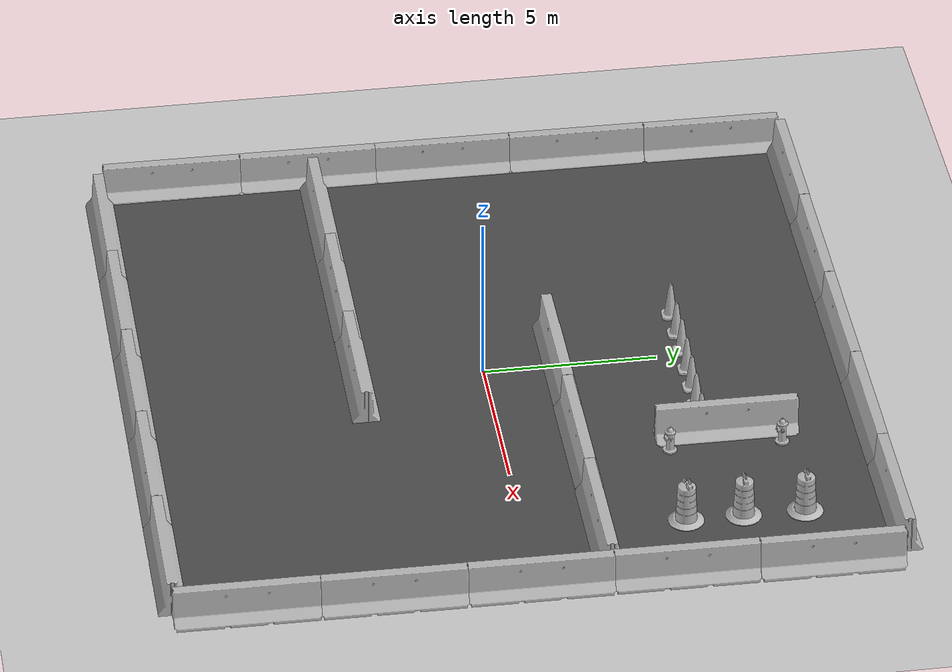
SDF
<sdf version="1.6">
 <world name="default">
  <light name="sun" type="directional">
   <pose>0 0 10 0 -0 0</pose>
   <diffuse>0.8 0.8 0.8 1</diffuse>
   <specular>0.2 0.2 0.2 1</specular>
   <attenuation>
    <range>1000</range>
    <constant>0.9</constant>
    <linear>0.01</linear>
    <quadratic>0.001</quadratic>
   </attenuation>
   <direction>-0.5 0.1 -0.9</direction>
   <spot><inner_angle>0</inner_angle><outer_angle>0</outer_angle><falloff>0</falloff></spot>
  </light>
  <model name="ground_plane">
   <static>1</static>
   <link name="link">
    <collision name="collision">
     <geometry><plane><normal>0 0 1</normal><size>100 100</size></plane></geometry>
     <surface><friction><ode><mu>100</mu><mu2>50</mu2></ode></friction></surface>
    </collision>
    <visual name="visual">
     <cast_shadows>0</cast_shadows>
     <geometry><plane><normal>0 0 1</normal><size>100 100</size></plane></geometry>
     <material>
      <script><uri>file://media/materials/scripts/gazebo.material</uri><name>Gazebo/Grey</name></script>
     </material>
    </visual>
    <velocity_decay><linear>0</linear><angular>0</angular></velocity_decay>
   </link>
  </model>
  <physics type="ode">
   <max_step_size>0.01</max_step_size>
   <real_time_factor>1</real_time_factor>
   <real_time_update_rate>100</real_time_update_rate>
  </physics>
  <scene><ambient>0.4 0.4 0.4 1</ambient><background>0.7 0.7 0.7 1</background><shadows>1</shadows></scene>
  <model name="jersey_barrier">
   <static>1</static>
   <link name="link">
    <visual name="visual">
     <geometry><mesh><uri>model://jersey_barrier/meshes/jersey_barrier.dae</uri></mesh></geometry>
    </visual>
    <collision name="upright">
     <pose>0 0 0.5715 0 -0 0</pose>
     <geometry><box><size>4.06542 0.3063 1.143</size></box></geometry>
    </collision>
    <collision name="base">
     <pose>0 0 0.032258 0 -0 0</pose>
     <geometry><box><size>4.06542 0.8107 0.064516</size></box></geometry>
    </collision>
    <collision name="base2">
     <pose>0 0 0.1 0 -0 0</pose>
     <geometry><box><size>4.06542 0.65 0.1</size></box></geometry>
    </collision>
    <collision name="base3">
     <pose>0 0 0.2 0 -0 0</pose>
     <geometry><box><size>4.06542 0.5 0.1</size></box></geometry>
    </collision>
    <collision name="left-angle">
     <pose>0 -0.224 0.2401 0.9 -0 0</pose>
     <geometry><box><size>4.06542 0.5 0.064516</size></box></geometry>
    </collision>
    <collision name="right-angle">
     <pose>0 0.224 0.2401 -0.9 0 0</pose>
     <geometry><box><size>4.06542 0.5 0.064516</size></box></geometry>
    </collision>
    <velocity_decay><linear>0</linear><angular>0</angular></velocity_decay>
   </link>
   <pose>-8 -10 0 0 -0 0</pose>
  </model>
  <model name="fire_hydrant_0">
   <static>1</static>
   <link name="link">
    <collision name="collision">
     <geometry><mesh><uri>model://fire_hydrant/meshes/fire_hydrant.dae</uri></mesh></geometry>
    </collision>
    <visual name="visual">
     <geometry><mesh><uri>model://fire_hydrant/meshes/fire_hydrant.dae</uri></mesh></geometry>
    </visual>
    <velocity_decay><linear>0</linear><angular>0</angular></velocity_decay>
   </link>
   <pose>4.7195 7.79795 0 0 -0 0</pose>
  </model>
  <model name="Construction Cone_0">
   <link name="link">
    <collision name="collision">
     <geometry>
      <mesh><scale>10 10 10</scale><uri>model://construction_cone/meshes/construction_cone.dae</uri></mesh>
     </geometry>
    </collision>
    <visual name="visual">
     <geometry>
      <mesh><scale>10 10 10</scale><uri>model://construction_cone/meshes/construction_cone.dae</uri></mesh>
     </geometry>
    </visual>
    <velocity_decay><linear>0</linear><angular>0</angular></velocity_decay>
    <inertial>
     <inertia><ixx>1</ixx><ixy>0</ixy><ixz>0</ixz><iyy>1</iyy><iyz>0</iyz><izz>1</izz></inertia>
     <mass>1</mass>
    </inertial>
   </link>
   <pose>3.53425 5.69091 0.050021 -0 8.3e-05 -0.007009</pose>
   <static>0</static>
  </model>
  <model name="Construction Barrel_0">
   <link name="link">
    <inertial>
     <pose>0 0 0.4 0 -0 0</pose>
     <mass>500</mass>
     <inertia><ixx>51.2096</ixx><iyy>51.2096</iyy><izz>25</izz><ixy>0</ixy><ixz>0</ixz><iyz>0</iyz></inertia>
    </inertial>
    <collision name="collision">
     <geometry><mesh><uri>model://construction_barrel/meshes/construction_barrel.dae</uri></mesh></geometry>
    </collision>
    <visual name="visual">
     <geometry><mesh><uri>model://construction_barrel/meshes/construction_barrel.dae</uri></mesh></geometry>
    </visual>
    <velocity_decay><linear>0</linear><angular>0</angular></velocity_decay>
   </link>
   <pose>7.89018 4.52192 0.049844 0.00056 3.1e-05 0.261558</pose>
   <static>0</static>
  </model>
  <model name="asphalt_plane">
   <static>1</static>
   <link name="link">
    <collision name="collision"><geometry><box><size>20 20 0.1</size></box></geometry></collision>
    <visual name="visual">
     <cast_shadows>0</cast_shadows>
     <geometry><box><size>20 20 0.1</size></box></geometry>
     <material>
      <script>
       <uri>model://asphalt_plane/materials/scripts</uri>
       <uri>model://asphalt_plane/materials/textures</uri>
       <name>vrc/asphalt</name>
      </script>
     </material>
    </visual>
    <velocity_decay><linear>0</linear><angular>0</angular></velocity_decay>
   </link>
   <pose>0.085302 -0.02706 0 0 -0 0</pose>
  </model>
  <model name="Construction Barrel_1">
   <link name="link">
    <inertial>
     <pose>0 0 0.4 0 -0 0</pose>
     <mass>500</mass>
     <inertia><ixx>51.2096</ixx><iyy>51.2096</iyy><izz>25</izz><ixy>0</ixy><ixz>0</ixz><iyz>0</iyz></inertia>
    </inertial>
    <collision name="collision">
     <geometry><mesh><uri>model://construction_barrel/meshes/construction_barrel.dae</uri></mesh></geometry>
    </collision>
    <visual name="visual">
     <geometry><mesh><uri>model://construction_barrel/meshes/construction_barrel.dae</uri></mesh></geometry>
    </visual>
    <velocity_decay><linear>0</linear><angular>0</angular></velocity_decay>
   </link>
   <pose>7.88454 6.13951 0.0499 -9.4e-05 -0.00041 -0.009523</pose>
   <static>0</static>
  </model>
  <model name="Construction Barrel_2">
   <link name="link">
    <inertial>
     <pose>0 0 0.4 0 -0 0</pose>
     <mass>500</mass>
     <inertia><ixx>51.2096</ixx><iyy>51.2096</iyy><izz>25</izz><ixy>0</ixy><ixz>0</ixz><iyz>0</iyz></inertia>
    </inertial>
    <collision name="collision">
     <geometry><mesh><uri>model://construction_barrel/meshes/construction_barrel.dae</uri></mesh></geometry>
    </collision>
    <visual name="visual">
     <geometry><mesh><uri>model://construction_barrel/meshes/construction_barrel.dae</uri></mesh></geometry>
    </visual>
    <velocity_decay><linear>0</linear><angular>0</angular></velocity_decay>
   </link>
   <pose>7.92498 7.86719 0.049882 0.000474 -7e-06 0.064855</pose>
   <static>0</static>
  </model>
  <gravity>0 0 -9.8</gravity>
  <magnetic_field>6e-06 2.3e-05 -4.2e-05</magnetic_field>
  <atmosphere type="adiabatic"/>
  <spherical_coordinates>
   <surface_model>EARTH_WGS84</surface_model>
   <latitude_deg>0</latitude_deg>
   <longitude_deg>0</longitude_deg>
   <elevation>0</elevation>
   <heading_deg>0</heading_deg>
  </spherical_coordinates>
  <model name="jersey_barrier_clone">
   <static>1</static>
   <link name="link">
    <visual name="visual">
     <geometry><mesh><uri>model://jersey_barrier/meshes/jersey_barrier.dae</uri></mesh></geometry>
    </visual>
    <collision name="upright">
     <pose>0 0 0.5715 0 -0 0</pose>
     <geometry><box><size>4.06542 0.3063 1.143</size></box></geometry>
    </collision>
    <collision name="base">
     <pose>0 0 0.032258 0 -0 0</pose>
     <geometry><box><size>4.06542 0.8107 0.064516</size></box></geometry>
    </collision>
    <collision name="base2">
     <pose>0 0 0.1 0 -0 0</pose>
     <geometry><box><size>4.06542 0.65 0.1</size></box></geometry>
    </collision>
    <collision name="base3">
     <pose>0 0 0.2 0 -0 0</pose>
     <geometry><box><size>4.06542 0.5 0.1</size></box></geometry>
    </collision>
    <collision name="left-angle">
     <pose>0 -0.224 0.2401 0.9 -0 0</pose>
     <geometry><box><size>4.06542 0.5 0.064516</size></box></geometry>
    </collision>
    <collision name="right-angle">
     <pose>0 0.224 0.2401 -0.9 0 0</pose>
     <geometry><box><size>4.06542 0.5 0.064516</size></box></geometry>
    </collision>
    <velocity_decay><linear>0</linear><angular>0</angular></velocity_decay>
   </link>
   <pose>-3.98491 -10 0 0 -0 0</pose>
  </model>
  <model name="jersey_barrier_clone_0">
   <static>1</static>
   <link name="link">
    <visual name="visual">
     <geometry><mesh><uri>model://jersey_barrier/meshes/jersey_barrier.dae</uri></mesh></geometry>
    </visual>
    <collision name="upright">
     <pose>0 0 0.5715 0 -0 0</pose>
     <geometry><box><size>4.06542 0.3063 1.143</size></box></geometry>
    </collision>
    <collision name="base">
     <pose>0 0 0.032258 0 -0 0</pose>
     <geometry><box><size>4.06542 0.8107 0.064516</size></box></geometry>
    </collision>
    <collision name="base2">
     <pose>0 0 0.1 0 -0 0</pose>
     <geometry><box><size>4.06542 0.65 0.1</size></box></geometry>
    </collision>
    <collision name="base3">
     <pose>0 0 0.2 0 -0 0</pose>
     <geometry><box><size>4.06542 0.5 0.1</size></box></geometry>
    </collision>
    <collision name="left-angle">
     <pose>0 -0.224 0.2401 0.9 -0 0</pose>
     <geometry><box><size>4.06542 0.5 0.064516</size></box></geometry>
    </collision>
    <collision name="right-angle">
     <pose>0 0.224 0.2401 -0.9 0 0</pose>
     <geometry><box><size>4.06542 0.5 0.064516</size></box></geometry>
    </collision>
    <velocity_decay><linear>0</linear><angular>0</angular></velocity_decay>
   </link>
   <pose>0.029689 -10 0 0 -0 0</pose>
  </model>
  <model name="jersey_barrier_clone_1">
   <static>1</static>
   <link name="link">
    <visual name="visual">
     <geometry><mesh><uri>model://jersey_barrier/meshes/jersey_barrier.dae</uri></mesh></geometry>
    </visual>
    <collision name="upright">
     <pose>0 0 0.5715 0 -0 0</pose>
     <geometry><box><size>4.06542 0.3063 1.143</size></box></geometry>
    </collision>
    <collision name="base">
     <pose>0 0 0.032258 0 -0 0</pose>
     <geometry><box><size>4.06542 0.8107 0.064516</size></box></geometry>
    </collision>
    <collision name="base2">
     <pose>0 0 0.1 0 -0 0</pose>
     <geometry><box><size>4.06542 0.65 0.1</size></box></geometry>
    </collision>
    <collision name="base3">
     <pose>0 0 0.2 0 -0 0</pose>
     <geometry><box><size>4.06542 0.5 0.1</size></box></geometry>
    </collision>
    <collision name="left-angle">
     <pose>0 -0.224 0.2401 0.9 -0 0</pose>
     <geometry><box><size>4.06542 0.5 0.064516</size></box></geometry>
    </collision>
    <collision name="right-angle">
     <pose>0 0.224 0.2401 -0.9 0 0</pose>
     <geometry><box><size>4.06542 0.5 0.064516</size></box></geometry>
    </collision>
    <velocity_decay><linear>0</linear><angular>0</angular></velocity_decay>
   </link>
   <pose>4.05757 -10 0 0 -0 0</pose>
  </model>
  <model name="jersey_barrier_clone_2">
   <static>1</static>
   <link name="link">
    <visual name="visual">
     <geometry><mesh><uri>model://jersey_barrier/meshes/jersey_barrier.dae</uri></mesh></geometry>
    </visual>
    <collision name="upright">
     <pose>0 0 0.5715 0 -0 0</pose>
     <geometry><box><size>4.06542 0.3063 1.143</size></box></geometry>
    </collision>
    <collision name="base">
     <pose>0 0 0.032258 0 -0 0</pose>
     <geometry><box><size>4.06542 0.8107 0.064516</size></box></geometry>
    </collision>
    <collision name="base2">
     <pose>0 0 0.1 0 -0 0</pose>
     <geometry><box><size>4.06542 0.65 0.1</size></box></geometry>
    </collision>
    <collision name="base3">
     <pose>0 0 0.2 0 -0 0</pose>
     <geometry><box><size>4.06542 0.5 0.1</size></box></geometry>
    </collision>
    <collision name="left-angle">
     <pose>0 -0.224 0.2401 0.9 -0 0</pose>
     <geometry><box><size>4.06542 0.5 0.064516</size></box></geometry>
    </collision>
    <collision name="right-angle">
     <pose>0 0.224 0.2401 -0.9 0 0</pose>
     <geometry><box><size>4.06542 0.5 0.064516</size></box></geometry>
    </collision>
    <velocity_decay><linear>0</linear><angular>0</angular></velocity_decay>
   </link>
   <pose>8.08988 -10 0 0 -0 0</pose>
  </model>
  <model name="jersey_barrier_clone_2_clone">
   <static>1</static>
   <link name="link">
    <visual name="visual">
     <geometry><mesh><uri>model://jersey_barrier/meshes/jersey_barrier.dae</uri></mesh></geometry>
    </visual>
    <collision name="upright">
     <pose>0 0 0.5715 0 -0 0</pose>
     <geometry><box><size>4.06542 0.3063 1.143</size></box></geometry>
    </collision>
    <collision name="base">
     <pose>0 0 0.032258 0 -0 0</pose>
     <geometry><box><size>4.06542 0.8107 0.064516</size></box></geometry>
    </collision>
    <collision name="base2">
     <pose>0 0 0.1 0 -0 0</pose>
     <geometry><box><size>4.06542 0.65 0.1</size></box></geometry>
    </collision>
    <collision name="base3">
     <pose>0 0 0.2 0 -0 0</pose>
     <geometry><box><size>4.06542 0.5 0.1</size></box></geometry>
    </collision>
    <collision name="left-angle">
     <pose>0 -0.224 0.2401 0.9 -0 0</pose>
     <geometry><box><size>4.06542 0.5 0.064516</size></box></geometry>
    </collision>
    <collision name="right-angle">
     <pose>0 0.224 0.2401 -0.9 0 0</pose>
     <geometry><box><size>4.06542 0.5 0.064516</size></box></geometry>
    </collision>
    <velocity_decay><linear>0</linear><angular>0</angular></velocity_decay>
   </link>
   <pose>-7.95973 10.3814 0 0 -0 0</pose>
  </model>
  <model name="jersey_barrier_clone_2_clone_0">
   <static>1</static>
   <link name="link">
    <visual name="visual">
     <geometry><mesh><uri>model://jersey_barrier/meshes/jersey_barrier.dae</uri></mesh></geometry>
    </visual>
    <collision name="upright">
     <pose>0 0 0.5715 0 -0 0</pose>
     <geometry><box><size>4.06542 0.3063 1.143</size></box></geometry>
    </collision>
    <collision name="base">
     <pose>0 0 0.032258 0 -0 0</pose>
     <geometry><box><size>4.06542 0.8107 0.064516</size></box></geometry>
    </collision>
    <collision name="base2">
     <pose>0 0 0.1 0 -0 0</pose>
     <geometry><box><size>4.06542 0.65 0.1</size></box></geometry>
    </collision>
    <collision name="base3">
     <pose>0 0 0.2 0 -0 0</pose>
     <geometry><box><size>4.06542 0.5 0.1</size></box></geometry>
    </collision>
    <collision name="left-angle">
     <pose>0 -0.224 0.2401 0.9 -0 0</pose>
     <geometry><box><size>4.06542 0.5 0.064516</size></box></geometry>
    </collision>
    <collision name="right-angle">
     <pose>0 0.224 0.2401 -0.9 0 0</pose>
     <geometry><box><size>4.06542 0.5 0.064516</size></box></geometry>
    </collision>
    <velocity_decay><linear>0</linear><angular>0</angular></velocity_decay>
   </link>
   <pose>-3.93474 10.3724 0 0 -0 0</pose>
  </model>
  <model name="jersey_barrier_clone_2_clone_1">
   <static>1</static>
   <link name="link">
    <visual name="visual">
     <geometry><mesh><uri>model://jersey_barrier/meshes/jersey_barrier.dae</uri></mesh></geometry>
    </visual>
    <collision name="upright">
     <pose>0 0 0.5715 0 -0 0</pose>
     <geometry><box><size>4.06542 0.3063 1.143</size></box></geometry>
    </collision>
    <collision name="base">
     <pose>0 0 0.032258 0 -0 0</pose>
     <geometry><box><size>4.06542 0.8107 0.064516</size></box></geometry>
    </collision>
    <collision name="base2">
     <pose>0 0 0.1 0 -0 0</pose>
     <geometry><box><size>4.06542 0.65 0.1</size></box></geometry>
    </collision>
    <collision name="base3">
     <pose>0 0 0.2 0 -0 0</pose>
     <geometry><box><size>4.06542 0.5 0.1</size></box></geometry>
    </collision>
    <collision name="left-angle">
     <pose>0 -0.224 0.2401 0.9 -0 0</pose>
     <geometry><box><size>4.06542 0.5 0.064516</size></box></geometry>
    </collision>
    <collision name="right-angle">
     <pose>0 0.224 0.2401 -0.9 0 0</pose>
     <geometry><box><size>4.06542 0.5 0.064516</size></box></geometry>
    </collision>
    <velocity_decay><linear>0</linear><angular>0</angular></velocity_decay>
   </link>
   <pose>0.091477 10.3693 0 0 -0 0</pose>
  </model>
  <model name="jersey_barrier_clone_2_clone_2">
   <static>1</static>
   <link name="link">
    <visual name="visual">
     <geometry><mesh><uri>model://jersey_barrier/meshes/jersey_barrier.dae</uri></mesh></geometry>
    </visual>
    <collision name="upright">
     <pose>0 0 0.5715 0 -0 0</pose>
     <geometry><box><size>4.06542 0.3063 1.143</size></box></geometry>
    </collision>
    <collision name="base">
     <pose>0 0 0.032258 0 -0 0</pose>
     <geometry><box><size>4.06542 0.8107 0.064516</size></box></geometry>
    </collision>
    <collision name="base2">
     <pose>0 0 0.1 0 -0 0</pose>
     <geometry><box><size>4.06542 0.65 0.1</size></box></geometry>
    </collision>
    <collision name="base3">
     <pose>0 0 0.2 0 -0 0</pose>
     <geometry><box><size>4.06542 0.5 0.1</size></box></geometry>
    </collision>
    <collision name="left-angle">
     <pose>0 -0.224 0.2401 0.9 -0 0</pose>
     <geometry><box><size>4.06542 0.5 0.064516</size></box></geometry>
    </collision>
    <collision name="right-angle">
     <pose>0 0.224 0.2401 -0.9 0 0</pose>
     <geometry><box><size>4.06542 0.5 0.064516</size></box></geometry>
    </collision>
    <velocity_decay><linear>0</linear><angular>0</angular></velocity_decay>
   </link>
   <pose>4.12155 10.3694 0 0 -0 0</pose>
  </model>
  <model name="jersey_barrier_clone_2_clone_3">
   <static>1</static>
   <link name="link">
    <visual name="visual">
     <geometry><mesh><uri>model://jersey_barrier/meshes/jersey_barrier.dae</uri></mesh></geometry>
    </visual>
    <collision name="upright">
     <pose>0 0 0.5715 0 -0 0</pose>
     <geometry><box><size>4.06542 0.3063 1.143</size></box></geometry>
    </collision>
    <collision name="base">
     <pose>0 0 0.032258 0 -0 0</pose>
     <geometry><box><size>4.06542 0.8107 0.064516</size></box></geometry>
    </collision>
    <collision name="base2">
     <pose>0 0 0.1 0 -0 0</pose>
     <geometry><box><size>4.06542 0.65 0.1</size></box></geometry>
    </collision>
    <collision name="base3">
     <pose>0 0 0.2 0 -0 0</pose>
     <geometry><box><size>4.06542 0.5 0.1</size></box></geometry>
    </collision>
    <collision name="left-angle">
     <pose>0 -0.224 0.2401 0.9 -0 0</pose>
     <geometry><box><size>4.06542 0.5 0.064516</size></box></geometry>
    </collision>
    <collision name="right-angle">
     <pose>0 0.224 0.2401 -0.9 0 0</pose>
     <geometry><box><size>4.06542 0.5 0.064516</size></box></geometry>
    </collision>
    <velocity_decay><linear>0</linear><angular>0</angular></velocity_decay>
   </link>
   <pose>8.13466 10.3622 0 0 -0 0</pose>
  </model>
  <model name="jersey_barrier_clone_2_clone_4">
   <static>1</static>
   <link name="link">
    <visual name="visual">
     <geometry><mesh><uri>model://jersey_barrier/meshes/jersey_barrier.dae</uri></mesh></geometry>
    </visual>
    <collision name="upright">
     <pose>0 0 0.5715 0 -0 0</pose>
     <geometry><box><size>4.06542 0.3063 1.143</size></box></geometry>
    </collision>
    <collision name="base">
     <pose>0 0 0.032258 0 -0 0</pose>
     <geometry><box><size>4.06542 0.8107 0.064516</size></box></geometry>
    </collision>
    <collision name="base2">
     <pose>0 0 0.1 0 -0 0</pose>
     <geometry><box><size>4.06542 0.65 0.1</size></box></geometry>
    </collision>
    <collision name="base3">
     <pose>0 0 0.2 0 -0 0</pose>
     <geometry><box><size>4.06542 0.5 0.1</size></box></geometry>
    </collision>
    <collision name="left-angle">
     <pose>0 -0.224 0.2401 0.9 -0 0</pose>
     <geometry><box><size>4.06542 0.5 0.064516</size></box></geometry>
    </collision>
    <collision name="right-angle">
     <pose>0 0.224 0.2401 -0.9 0 0</pose>
     <geometry><box><size>4.06542 0.5 0.064516</size></box></geometry>
    </collision>
    <velocity_decay><linear>0</linear><angular>0</angular></velocity_decay>
   </link>
   <pose>-7.94528 -3.64251 0 0 -0 0</pose>
  </model>
  <model name="jersey_barrier_clone_2_clone_5">
   <static>1</static>
   <link name="link">
    <visual name="visual">
     <geometry><mesh><uri>model://jersey_barrier/meshes/jersey_barrier.dae</uri></mesh></geometry>
    </visual>
    <collision name="upright">
     <pose>0 0 0.5715 0 -0 0</pose>
     <geometry><box><size>4.06542 0.3063 1.143</size></box></geometry>
    </collision>
    <collision name="base">
     <pose>0 0 0.032258 0 -0 0</pose>
     <geometry><box><size>4.06542 0.8107 0.064516</size></box></geometry>
    </collision>
    <collision name="base2">
     <pose>0 0 0.1 0 -0 0</pose>
     <geometry><box><size>4.06542 0.65 0.1</size></box></geometry>
    </collision>
    <collision name="base3">
     <pose>0 0 0.2 0 -0 0</pose>
     <geometry><box><size>4.06542 0.5 0.1</size></box></geometry>
    </collision>
    <collision name="left-angle">
     <pose>0 -0.224 0.2401 0.9 -0 0</pose>
     <geometry><box><size>4.06542 0.5 0.064516</size></box></geometry>
    </collision>
    <collision name="right-angle">
     <pose>0 0.224 0.2401 -0.9 0 0</pose>
     <geometry><box><size>4.06542 0.5 0.064516</size></box></geometry>
    </collision>
    <velocity_decay><linear>0</linear><angular>0</angular></velocity_decay>
   </link>
   <pose>-3.9369 -3.63544 0 0 -0 0</pose>
  </model>
  <model name="jersey_barrier_clone_2_clone_6">
   <static>1</static>
   <link name="link">
    <visual name="visual">
     <geometry><mesh><uri>model://jersey_barrier/meshes/jersey_barrier.dae</uri></mesh></geometry>
    </visual>
    <collision name="upright">
     <pose>0 0 0.5715 0 -0 0</pose>
     <geometry><box><size>4.06542 0.3063 1.143</size></box></geometry>
    </collision>
    <collision name="base">
     <pose>0 0 0.032258 0 -0 0</pose>
     <geometry><box><size>4.06542 0.8107 0.064516</size></box></geometry>
    </collision>
    <collision name="base2">
     <pose>0 0 0.1 0 -0 0</pose>
     <geometry><box><size>4.06542 0.65 0.1</size></box></geometry>
    </collision>
    <collision name="base3">
     <pose>0 0 0.2 0 -0 0</pose>
     <geometry><box><size>4.06542 0.5 0.1</size></box></geometry>
    </collision>
    <collision name="left-angle">
     <pose>0 -0.224 0.2401 0.9 -0 0</pose>
     <geometry><box><size>4.06542 0.5 0.064516</size></box></geometry>
    </collision>
    <collision name="right-angle">
     <pose>0 0.224 0.2401 -0.9 0 0</pose>
     <geometry><box><size>4.06542 0.5 0.064516</size></box></geometry>
    </collision>
    <velocity_decay><linear>0</linear><angular>0</angular></velocity_decay>
   </link>
   <pose>0.041376 -3.62875 0 0 -0 0</pose>
  </model>
  <model name="jersey_barrier_clone_2_clone_7">
   <static>1</static>
   <link name="link">
    <visual name="visual">
     <geometry><mesh><uri>model://jersey_barrier/meshes/jersey_barrier.dae</uri></mesh></geometry>
    </visual>
    <collision name="upright">
     <pose>0 0 0.5715 0 -0 0</pose>
     <geometry><box><size>4.06542 0.3063 1.143</size></box></geometry>
    </collision>
    <collision name="base">
     <pose>0 0 0.032258 0 -0 0</pose>
     <geometry><box><size>4.06542 0.8107 0.064516</size></box></geometry>
    </collision>
    <collision name="base2">
     <pose>0 0 0.1 0 -0 0</pose>
     <geometry><box><size>4.06542 0.65 0.1</size></box></geometry>
    </collision>
    <collision name="base3">
     <pose>0 0 0.2 0 -0 0</pose>
     <geometry><box><size>4.06542 0.5 0.1</size></box></geometry>
    </collision>
    <collision name="left-angle">
     <pose>0 -0.224 0.2401 0.9 -0 0</pose>
     <geometry><box><size>4.06542 0.5 0.064516</size></box></geometry>
    </collision>
    <collision name="right-angle">
     <pose>0 0.224 0.2401 -0.9 0 0</pose>
     <geometry><box><size>4.06542 0.5 0.064516</size></box></geometry>
    </collision>
    <velocity_decay><linear>0</linear><angular>0</angular></velocity_decay>
   </link>
   <pose>8.08296 2.0835 0 0 -0 0</pose>
  </model>
  <model name="jersey_barrier_clone_2_clone_8">
   <static>1</static>
   <link name="link">
    <visual name="visual">
     <geometry><mesh><uri>model://jersey_barrier/meshes/jersey_barrier.dae</uri></mesh></geometry>
    </visual>
    <collision name="upright">
     <pose>0 0 0.5715 0 -0 0</pose>
     <geometry><box><size>4.06542 0.3063 1.143</size></box></geometry>
    </collision>
    <collision name="base">
     <pose>0 0 0.032258 0 -0 0</pose>
     <geometry><box><size>4.06542 0.8107 0.064516</size></box></geometry>
    </collision>
    <collision name="base2">
     <pose>0 0 0.1 0 -0 0</pose>
     <geometry><box><size>4.06542 0.65 0.1</size></box></geometry>
    </collision>
    <collision name="base3">
     <pose>0 0 0.2 0 -0 0</pose>
     <geometry><box><size>4.06542 0.5 0.1</size></box></geometry>
    </collision>
    <collision name="left-angle">
     <pose>0 -0.224 0.2401 0.9 -0 0</pose>
     <geometry><box><size>4.06542 0.5 0.064516</size></box></geometry>
    </collision>
    <collision name="right-angle">
     <pose>0 0.224 0.2401 -0.9 0 0</pose>
     <geometry><box><size>4.06542 0.5 0.064516</size></box></geometry>
    </collision>
    <velocity_decay><linear>0</linear><angular>0</angular></velocity_decay>
   </link>
   <pose>4.0629 2.09704 0 0 -0 0</pose>
  </model>
  <model name="jersey_barrier_clone_2_clone_9">
   <static>1</static>
   <link name="link">
    <visual name="visual">
     <geometry><mesh><uri>model://jersey_barrier/meshes/jersey_barrier.dae</uri></mesh></geometry>
    </visual>
    <collision name="upright">
     <pose>0 0 0.5715 0 -0 0</pose>
     <geometry><box><size>4.06542 0.3063 1.143</size></box></geometry>
    </collision>
    <collision name="base">
     <pose>0 0 0.032258 0 -0 0</pose>
     <geometry><box><size>4.06542 0.8107 0.064516</size></box></geometry>
    </collision>
    <collision name="base2">
     <pose>0 0 0.1 0 -0 0</pose>
     <geometry><box><size>4.06542 0.65 0.1</size></box></geometry>
    </collision>
    <collision name="base3">
     <pose>0 0 0.2 0 -0 0</pose>
     <geometry><box><size>4.06542 0.5 0.1</size></box></geometry>
    </collision>
    <collision name="left-angle">
     <pose>0 -0.224 0.2401 0.9 -0 0</pose>
     <geometry><box><size>4.06542 0.5 0.064516</size></box></geometry>
    </collision>
    <collision name="right-angle">
     <pose>0 0.224 0.2401 -0.9 0 0</pose>
     <geometry><box><size>4.06542 0.5 0.064516</size></box></geometry>
    </collision>
    <velocity_decay><linear>0</linear><angular>0</angular></velocity_decay>
   </link>
   <pose>0.041148 2.10982 0 0 -0 0</pose>
  </model>
  <model name="jersey_barrier_clone_2_clone_10">
   <static>1</static>
   <link name="link">
    <visual name="visual">
     <geometry><mesh><uri>model://jersey_barrier/meshes/jersey_barrier.dae</uri></mesh></geometry>
    </visual>
    <collision name="upright">
     <pose>0 0 0.5715 0 -0 0</pose>
     <geometry><box><size>4.06542 0.3063 1.143</size></box></geometry>
    </collision>
    <collision name="base">
     <pose>0 0 0.032258 0 -0 0</pose>
     <geometry><box><size>4.06542 0.8107 0.064516</size></box></geometry>
    </collision>
    <collision name="base2">
     <pose>0 0 0.1 0 -0 0</pose>
     <geometry><box><size>4.06542 0.65 0.1</size></box></geometry>
    </collision>
    <collision name="base3">
     <pose>0 0 0.2 0 -0 0</pose>
     <geometry><box><size>4.06542 0.5 0.1</size></box></geometry>
    </collision>
    <collision name="left-angle">
     <pose>0 -0.224 0.2401 0.9 -0 0</pose>
     <geometry><box><size>4.06542 0.5 0.064516</size></box></geometry>
    </collision>
    <collision name="right-angle">
     <pose>0 0.224 0.2401 -0.9 0 0</pose>
     <geometry><box><size>4.06542 0.5 0.064516</size></box></geometry>
    </collision>
    <velocity_decay><linear>0</linear><angular>0</angular></velocity_decay>
   </link>
   <pose>10.4417 -8.0069 0 0 -0 1.56436</pose>
  </model>
  <model name="jersey_barrier_clone_2_clone_10_clone">
   <static>1</static>
   <link name="link">
    <visual name="visual">
     <geometry><mesh><uri>model://jersey_barrier/meshes/jersey_barrier.dae</uri></mesh></geometry>
    </visual>
    <collision name="upright">
     <pose>0 0 0.5715 0 -0 0</pose>
     <geometry><box><size>4.06542 0.3063 1.143</size></box></geometry>
    </collision>
    <collision name="base">
     <pose>0 0 0.032258 0 -0 0</pose>
     <geometry><box><size>4.06542 0.8107 0.064516</size></box></geometry>
    </collision>
    <collision name="base2">
     <pose>0 0 0.1 0 -0 0</pose>
     <geometry><box><size>4.06542 0.65 0.1</size></box></geometry>
    </collision>
    <collision name="base3">
     <pose>0 0 0.2 0 -0 0</pose>
     <geometry><box><size>4.06542 0.5 0.1</size></box></geometry>
    </collision>
    <collision name="left-angle">
     <pose>0 -0.224 0.2401 0.9 -0 0</pose>
     <geometry><box><size>4.06542 0.5 0.064516</size></box></geometry>
    </collision>
    <collision name="right-angle">
     <pose>0 0.224 0.2401 -0.9 0 0</pose>
     <geometry><box><size>4.06542 0.5 0.064516</size></box></geometry>
    </collision>
    <velocity_decay><linear>0</linear><angular>0</angular></velocity_decay>
   </link>
   <pose>10.4723 -3.98742 0 0 -0 1.56436</pose>
  </model>
  <model name="jersey_barrier_clone_2_clone_10_clone_0">
   <static>1</static>
   <link name="link">
    <visual name="visual">
     <geometry><mesh><uri>model://jersey_barrier/meshes/jersey_barrier.dae</uri></mesh></geometry>
    </visual>
    <collision name="upright">
     <pose>0 0 0.5715 0 -0 0</pose>
     <geometry><box><size>4.06542 0.3063 1.143</size></box></geometry>
    </collision>
    <collision name="base">
     <pose>0 0 0.032258 0 -0 0</pose>
     <geometry><box><size>4.06542 0.8107 0.064516</size></box></geometry>
    </collision>
    <collision name="base2">
     <pose>0 0 0.1 0 -0 0</pose>
     <geometry><box><size>4.06542 0.65 0.1</size></box></geometry>
    </collision>
    <collision name="base3">
     <pose>0 0 0.2 0 -0 0</pose>
     <geometry><box><size>4.06542 0.5 0.1</size></box></geometry>
    </collision>
    <collision name="left-angle">
     <pose>0 -0.224 0.2401 0.9 -0 0</pose>
     <geometry><box><size>4.06542 0.5 0.064516</size></box></geometry>
    </collision>
    <collision name="right-angle">
     <pose>0 0.224 0.2401 -0.9 0 0</pose>
     <geometry><box><size>4.06542 0.5 0.064516</size></box></geometry>
    </collision>
    <velocity_decay><linear>0</linear><angular>0</angular></velocity_decay>
   </link>
   <pose>10.4894 0.054545 0 0 -0 1.56436</pose>
  </model>
  <model name="jersey_barrier_clone_2_clone_10_clone_1">
   <static>1</static>
   <link name="link">
    <visual name="visual">
     <geometry><mesh><uri>model://jersey_barrier/meshes/jersey_barrier.dae</uri></mesh></geometry>
    </visual>
    <collision name="upright">
     <pose>0 0 0.5715 0 -0 0</pose>
     <geometry><box><size>4.06542 0.3063 1.143</size></box></geometry>
    </collision>
    <collision name="base">
     <pose>0 0 0.032258 0 -0 0</pose>
     <geometry><box><size>4.06542 0.8107 0.064516</size></box></geometry>
    </collision>
    <collision name="base2">
     <pose>0 0 0.1 0 -0 0</pose>
     <geometry><box><size>4.06542 0.65 0.1</size></box></geometry>
    </collision>
    <collision name="base3">
     <pose>0 0 0.2 0 -0 0</pose>
     <geometry><box><size>4.06542 0.5 0.1</size></box></geometry>
    </collision>
    <collision name="left-angle">
     <pose>0 -0.224 0.2401 0.9 -0 0</pose>
     <geometry><box><size>4.06542 0.5 0.064516</size></box></geometry>
    </collision>
    <collision name="right-angle">
     <pose>0 0.224 0.2401 -0.9 0 0</pose>
     <geometry><box><size>4.06542 0.5 0.064516</size></box></geometry>
    </collision>
    <velocity_decay><linear>0</linear><angular>0</angular></velocity_decay>
   </link>
   <pose>10.4997 4.09332 0 0 -0 1.56436</pose>
  </model>
  <model name="jersey_barrier_clone_2_clone_10_clone_2">
   <static>1</static>
   <link name="link">
    <visual name="visual">
     <geometry><mesh><uri>model://jersey_barrier/meshes/jersey_barrier.dae</uri></mesh></geometry>
    </visual>
    <collision name="upright">
     <pose>0 0 0.5715 0 -0 0</pose>
     <geometry><box><size>4.06542 0.3063 1.143</size></box></geometry>
    </collision>
    <collision name="base">
     <pose>0 0 0.032258 0 -0 0</pose>
     <geometry><box><size>4.06542 0.8107 0.064516</size></box></geometry>
    </collision>
    <collision name="base2">
     <pose>0 0 0.1 0 -0 0</pose>
     <geometry><box><size>4.06542 0.65 0.1</size></box></geometry>
    </collision>
    <collision name="base3">
     <pose>0 0 0.2 0 -0 0</pose>
     <geometry><box><size>4.06542 0.5 0.1</size></box></geometry>
    </collision>
    <collision name="left-angle">
     <pose>0 -0.224 0.2401 0.9 -0 0</pose>
     <geometry><box><size>4.06542 0.5 0.064516</size></box></geometry>
    </collision>
    <collision name="right-angle">
     <pose>0 0.224 0.2401 -0.9 0 0</pose>
     <geometry><box><size>4.06542 0.5 0.064516</size></box></geometry>
    </collision>
    <velocity_decay><linear>0</linear><angular>0</angular></velocity_decay>
   </link>
   <pose>10.5353 8.13894 0 0 -0 1.56436</pose>
  </model>
  <model name="jersey_barrier_clone_2_clone_10_clone_3">
   <static>1</static>
   <link name="link">
    <visual name="visual">
     <geometry><mesh><uri>model://jersey_barrier/meshes/jersey_barrier.dae</uri></mesh></geometry>
    </visual>
    <collision name="upright">
     <pose>0 0 0.5715 0 -0 0</pose>
     <geometry><box><size>4.06542 0.3063 1.143</size></box></geometry>
    </collision>
    <collision name="base">
     <pose>0 0 0.032258 0 -0 0</pose>
     <geometry><box><size>4.06542 0.8107 0.064516</size></box></geometry>
    </collision>
    <collision name="base2">
     <pose>0 0 0.1 0 -0 0</pose>
     <geometry><box><size>4.06542 0.65 0.1</size></box></geometry>
    </collision>
    <collision name="base3">
     <pose>0 0 0.2 0 -0 0</pose>
     <geometry><box><size>4.06542 0.5 0.1</size></box></geometry>
    </collision>
    <collision name="left-angle">
     <pose>0 -0.224 0.2401 0.9 -0 0</pose>
     <geometry><box><size>4.06542 0.5 0.064516</size></box></geometry>
    </collision>
    <collision name="right-angle">
     <pose>0 0.224 0.2401 -0.9 0 0</pose>
     <geometry><box><size>4.06542 0.5 0.064516</size></box></geometry>
    </collision>
    <velocity_decay><linear>0</linear><angular>0</angular></velocity_decay>
   </link>
   <pose>-10.336 -7.79599 0 0 -0 1.56436</pose>
  </model>
  <model name="jersey_barrier_clone_2_clone_10_clone_4">
   <static>1</static>
   <link name="link">
    <visual name="visual">
     <geometry><mesh><uri>model://jersey_barrier/meshes/jersey_barrier.dae</uri></mesh></geometry>
    </visual>
    <collision name="upright">
     <pose>0 0 0.5715 0 -0 0</pose>
     <geometry><box><size>4.06542 0.3063 1.143</size></box></geometry>
    </collision>
    <collision name="base">
     <pose>0 0 0.032258 0 -0 0</pose>
     <geometry><box><size>4.06542 0.8107 0.064516</size></box></geometry>
    </collision>
    <collision name="base2">
     <pose>0 0 0.1 0 -0 0</pose>
     <geometry><box><size>4.06542 0.65 0.1</size></box></geometry>
    </collision>
    <collision name="base3">
     <pose>0 0 0.2 0 -0 0</pose>
     <geometry><box><size>4.06542 0.5 0.1</size></box></geometry>
    </collision>
    <collision name="left-angle">
     <pose>0 -0.224 0.2401 0.9 -0 0</pose>
     <geometry><box><size>4.06542 0.5 0.064516</size></box></geometry>
    </collision>
    <collision name="right-angle">
     <pose>0 0.224 0.2401 -0.9 0 0</pose>
     <geometry><box><size>4.06542 0.5 0.064516</size></box></geometry>
    </collision>
    <velocity_decay><linear>0</linear><angular>0</angular></velocity_decay>
   </link>
   <pose>-10.317 -3.7508 0 0 -0 1.56436</pose>
  </model>
  <model name="jersey_barrier_clone_2_clone_10_clone_5">
   <static>1</static>
   <link name="link">
    <visual name="visual">
     <geometry><mesh><uri>model://jersey_barrier/meshes/jersey_barrier.dae</uri></mesh></geometry>
    </visual>
    <collision name="upright">
     <pose>0 0 0.5715 0 -0 0</pose>
     <geometry><box><size>4.06542 0.3063 1.143</size></box></geometry>
    </collision>
    <collision name="base">
     <pose>0 0 0.032258 0 -0 0</pose>
     <geometry><box><size>4.06542 0.8107 0.064516</size></box></geometry>
    </collision>
    <collision name="base2">
     <pose>0 0 0.1 0 -0 0</pose>
     <geometry><box><size>4.06542 0.65 0.1</size></box></geometry>
    </collision>
    <collision name="base3">
     <pose>0 0 0.2 0 -0 0</pose>
     <geometry><box><size>4.06542 0.5 0.1</size></box></geometry>
    </collision>
    <collision name="left-angle">
     <pose>0 -0.224 0.2401 0.9 -0 0</pose>
     <geometry><box><size>4.06542 0.5 0.064516</size></box></geometry>
    </collision>
    <collision name="right-angle">
     <pose>0 0.224 0.2401 -0.9 0 0</pose>
     <geometry><box><size>4.06542 0.5 0.064516</size></box></geometry>
    </collision>
    <velocity_decay><linear>0</linear><angular>0</angular></velocity_decay>
   </link>
   <pose>-10.2984 0.257615 0 0 -0 1.56436</pose>
  </model>
  <model name="jersey_barrier_clone_2_clone_10_clone_6">
   <static>1</static>
   <link name="link">
    <visual name="visual">
     <geometry><mesh><uri>model://jersey_barrier/meshes/jersey_barrier.dae</uri></mesh></geometry>
    </visual>
    <collision name="upright">
     <pose>0 0 0.5715 0 -0 0</pose>
     <geometry><box><size>4.06542 0.3063 1.143</size></box></geometry>
    </collision>
    <collision name="base">
     <pose>0 0 0.032258 0 -0 0</pose>
     <geometry><box><size>4.06542 0.8107 0.064516</size></box></geometry>
    </collision>
    <collision name="base2">
     <pose>0 0 0.1 0 -0 0</pose>
     <geometry><box><size>4.06542 0.65 0.1</size></box></geometry>
    </collision>
    <collision name="base3">
     <pose>0 0 0.2 0 -0 0</pose>
     <geometry><box><size>4.06542 0.5 0.1</size></box></geometry>
    </collision>
    <collision name="left-angle">
     <pose>0 -0.224 0.2401 0.9 -0 0</pose>
     <geometry><box><size>4.06542 0.5 0.064516</size></box></geometry>
    </collision>
    <collision name="right-angle">
     <pose>0 0.224 0.2401 -0.9 0 0</pose>
     <geometry><box><size>4.06542 0.5 0.064516</size></box></geometry>
    </collision>
    <velocity_decay><linear>0</linear><angular>0</angular></velocity_decay>
   </link>
   <pose>-10.2742 4.28255 0 0 -0 1.56436</pose>
  </model>
  <model name="jersey_barrier_clone_2_clone_10_clone_7">
   <static>1</static>
   <link name="link">
    <visual name="visual">
     <geometry><mesh><uri>model://jersey_barrier/meshes/jersey_barrier.dae</uri></mesh></geometry>
    </visual>
    <collision name="upright">
     <pose>0 0 0.5715 0 -0 0</pose>
     <geometry><box><size>4.06542 0.3063 1.143</size></box></geometry>
    </collision>
    <collision name="base">
     <pose>0 0 0.032258 0 -0 0</pose>
     <geometry><box><size>4.06542 0.8107 0.064516</size></box></geometry>
    </collision>
    <collision name="base2">
     <pose>0 0 0.1 0 -0 0</pose>
     <geometry><box><size>4.06542 0.65 0.1</size></box></geometry>
    </collision>
    <collision name="base3">
     <pose>0 0 0.2 0 -0 0</pose>
     <geometry><box><size>4.06542 0.5 0.1</size></box></geometry>
    </collision>
    <collision name="left-angle">
     <pose>0 -0.224 0.2401 0.9 -0 0</pose>
     <geometry><box><size>4.06542 0.5 0.064516</size></box></geometry>
    </collision>
    <collision name="right-angle">
     <pose>0 0.224 0.2401 -0.9 0 0</pose>
     <geometry><box><size>4.06542 0.5 0.064516</size></box></geometry>
    </collision>
    <velocity_decay><linear>0</linear><angular>0</angular></velocity_decay>
   </link>
   <pose>-10.2362 8.32775 0 0 -0 1.56436</pose>
  </model>
  <model name="jersey_barrier_clone_2_clone_10_clone_8">
   <static>1</static>
   <link name="link">
    <visual name="visual">
     <geometry><mesh><uri>model://jersey_barrier/meshes/jersey_barrier.dae</uri></mesh></geometry>
    </visual>
    <collision name="upright">
     <pose>0 0 0.5715 0 -0 0</pose>
     <geometry><box><size>4.06542 0.3063 1.143</size></box></geometry>
    </collision>
    <collision name="base">
     <pose>0 0 0.032258 0 -0 0</pose>
     <geometry><box><size>4.06542 0.8107 0.064516</size></box></geometry>
    </collision>
    <collision name="base2">
     <pose>0 0 0.1 0 -0 0</pose>
     <geometry><box><size>4.06542 0.65 0.1</size></box></geometry>
    </collision>
    <collision name="base3">
     <pose>0 0 0.2 0 -0 0</pose>
     <geometry><box><size>4.06542 0.5 0.1</size></box></geometry>
    </collision>
    <collision name="left-angle">
     <pose>0 -0.224 0.2401 0.9 -0 0</pose>
     <geometry><box><size>4.06542 0.5 0.064516</size></box></geometry>
    </collision>
    <collision name="right-angle">
     <pose>0 0.224 0.2401 -0.9 0 0</pose>
     <geometry><box><size>4.06542 0.5 0.064516</size></box></geometry>
    </collision>
    <velocity_decay><linear>0</linear><angular>0</angular></velocity_decay>
   </link>
   <pose>3.98403 6.32497 0 0 -0 1.56436</pose>
  </model>
  <model name="Construction Cone_0_clone">
   <link name="link">
    <collision name="collision">
     <geometry>
      <mesh><scale>10 10 10</scale><uri>model://construction_cone/meshes/construction_cone.dae</uri></mesh>
     </geometry>
    </collision>
    <visual name="visual">
     <geometry>
      <mesh><scale>10 10 10</scale><uri>model://construction_cone/meshes/construction_cone.dae</uri></mesh>
     </geometry>
    </visual>
    <velocity_decay><linear>0</linear><angular>0</angular></velocity_decay>
    <inertial>
     <inertia><ixx>1</ixx><ixy>0</ixy><ixz>0</ixz><iyy>1</iyy><iyz>0</iyz><izz>1</izz></inertia>
     <mass>1</mass>
    </inertial>
   </link>
   <pose>2.57408 5.70678 0.050021 -0 8.3e-05 -0.007009</pose>
   <static>0</static>
  </model>
  <model name="Construction Cone_0_clone_0">
   <link name="link">
    <collision name="collision">
     <geometry>
      <mesh><scale>10 10 10</scale><uri>model://construction_cone/meshes/construction_cone.dae</uri></mesh>
     </geometry>
    </collision>
    <visual name="visual">
     <geometry>
      <mesh><scale>10 10 10</scale><uri>model://construction_cone/meshes/construction_cone.dae</uri></mesh>
     </geometry>
    </visual>
    <velocity_decay><linear>0</linear><angular>0</angular></velocity_decay>
    <inertial>
     <inertia><ixx>1</ixx><ixy>0</ixy><ixz>0</ixz><iyy>1</iyy><iyz>0</iyz><izz>1</izz></inertia>
     <mass>1</mass>
    </inertial>
   </link>
   <pose>1.69503 5.72945 0.050021 -0 8.3e-05 -0.007009</pose>
   <static>0</static>
  </model>
  <model name="Construction Cone_0_clone_1">
   <link name="link">
    <collision name="collision">
     <geometry>
      <mesh><scale>10 10 10</scale><uri>model://construction_cone/meshes/construction_cone.dae</uri></mesh>
     </geometry>
    </collision>
    <visual name="visual">
     <geometry>
      <mesh><scale>10 10 10</scale><uri>model://construction_cone/meshes/construction_cone.dae</uri></mesh>
     </geometry>
    </visual>
    <velocity_decay><linear>0</linear><angular>0</angular></velocity_decay>
    <inertial>
     <inertia><ixx>1</ixx><ixy>0</ixy><ixz>0</ixz><iyy>1</iyy><iyz>0</iyz><izz>1</izz></inertia>
     <mass>1</mass>
    </inertial>
   </link>
   <pose>0.829085 5.73756 0.050021 -0 8.3e-05 -0.007009</pose>
   <static>0</static>
  </model>
  <model name="Construction Cone_0_clone_2">
   <link name="link">
    <collision name="collision">
     <geometry>
      <mesh><scale>10 10 10</scale><uri>model://construction_cone/meshes/construction_cone.dae</uri></mesh>
     </geometry>
    </collision>
    <visual name="visual">
     <geometry>
      <mesh><scale>10 10 10</scale><uri>model://construction_cone/meshes/construction_cone.dae</uri></mesh>
     </geometry>
    </visual>
    <velocity_decay><linear>0</linear><angular>0</angular></velocity_decay>
    <inertial>
     <inertia><ixx>1</ixx><ixy>0</ixy><ixz>0</ixz><iyy>1</iyy><iyz>0</iyz><izz>1</izz></inertia>
     <mass>1</mass>
    </inertial>
   </link>
   <pose>-0.110945 5.7542 0.050021 -0 8.3e-05 -0.007009</pose>
   <static>0</static>
  </model>
  <model name="Construction Cone_0_clone_3">
   <link name="link">
    <collision name="collision">
     <geometry>
      <mesh><scale>10 10 10</scale><uri>model://construction_cone/meshes/construction_cone.dae</uri></mesh>
     </geometry>
    </collision>
    <visual name="visual">
     <geometry>
      <mesh><scale>10 10 10</scale><uri>model://construction_cone/meshes/construction_cone.dae</uri></mesh>
     </geometry>
    </visual>
    <velocity_decay><linear>0</linear><angular>0</angular></velocity_decay>
    <inertial>
     <inertia><ixx>1</ixx><ixy>0</ixy><ixz>0</ixz><iyy>1</iyy><iyz>0</iyz><izz>1</izz></inertia>
     <mass>1</mass>
    </inertial>
   </link>
   <pose>-0.970256 5.74036 0.050021 -0 8.3e-05 -0.007009</pose>
   <static>0</static>
  </model>
  <model name="Construction Cone_0_clone_4">
   <link name="link">
    <collision name="collision">
     <geometry>
      <mesh><scale>10 10 10</scale><uri>model://construction_cone/meshes/construction_cone.dae</uri></mesh>
     </geometry>
    </collision>
    <visual name="visual">
     <geometry>
      <mesh><scale>10 10 10</scale><uri>model://construction_cone/meshes/construction_cone.dae</uri></mesh>
     </geometry>
    </visual>
    <velocity_decay><linear>0</linear><angular>0</angular></velocity_decay>
    <inertial>
     <inertia><ixx>1</ixx><ixy>0</ixy><ixz>0</ixz><iyy>1</iyy><iyz>0</iyz><izz>1</izz></inertia>
     <mass>1</mass>
    </inertial>
   </link>
   <pose>-1.92888 5.73074 0.050021 -0 8.3e-05 -0.007009</pose>
   <static>0</static>
  </model>
  <model name="fire_hydrant_0_clone">
   <static>1</static>
   <link name="link">
    <collision name="collision">
     <geometry><mesh><uri>model://fire_hydrant/meshes/fire_hydrant.dae</uri></mesh></geometry>
    </collision>
    <visual name="visual">
     <geometry><mesh><uri>model://fire_hydrant/meshes/fire_hydrant.dae</uri></mesh></geometry>
    </visual>
    <velocity_decay><linear>0</linear><angular>0</angular></velocity_decay>
   </link>
   <pose>4.6723 4.60903 0 0 -0 0</pose>
  </model>
 </world>
</sdf>
